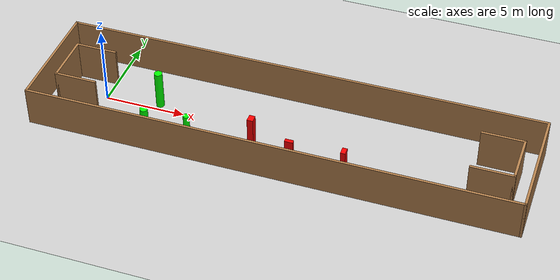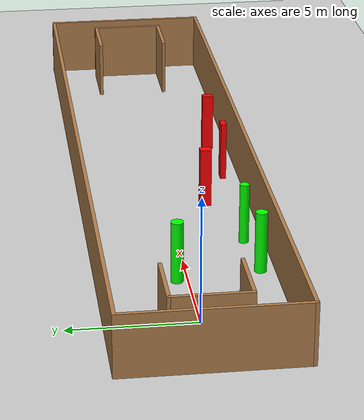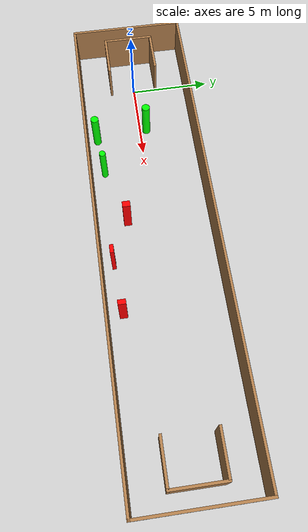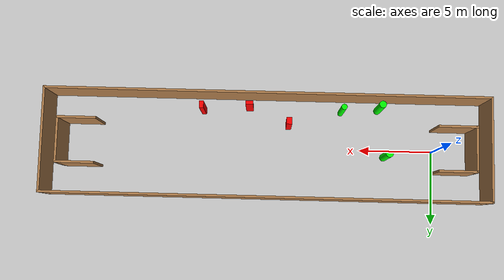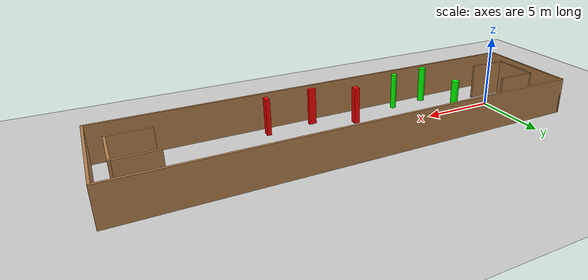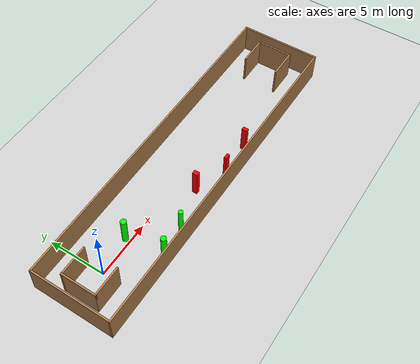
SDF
<sdf version="1.7">
 <world name="default">
  <light name="sun" type="directional">
   <pose>0 0 10 0 -0 0</pose>
   <diffuse>0.8 0.8 0.8 1</diffuse>
   <specular>0.2 0.2 0.2 1</specular>
   <attenuation>
    <range>1000</range>
    <constant>0.9</constant>
    <linear>0.01</linear>
    <quadratic>0.001</quadratic>
   </attenuation>
   <direction>-0.5 0.1 -0.9</direction>
   <spot><inner_angle>0</inner_angle><outer_angle>0</outer_angle><falloff>0</falloff></spot>
  </light>
  <model name="ground_plane">
   <static>1</static>
   <link name="link">
    <collision name="collision">
     <geometry><plane><normal>0 0 1</normal><size>100 100</size></plane></geometry>
     <surface>
      <contact><collide_bitmask>65535</collide_bitmask></contact>
      <friction><ode><mu>100</mu><mu2>50</mu2></ode></friction>
     </surface>
    </collision>
    <visual name="visual">
     <cast_shadows>0</cast_shadows>
     <geometry><plane><normal>0 0 1</normal><size>100 100</size></plane></geometry>
     <material>
      <script><uri>file://media/materials/scripts/gazebo.material</uri><name>Gazebo/Grey</name></script>
     </material>
    </visual>
   </link>
  </model>
  <gravity>0 0 -9.8</gravity>
  <magnetic_field>6e-06 2.3e-05 -4.2e-05</magnetic_field>
  <atmosphere type="adiabatic"/>
  <physics type="ode">
   <max_step_size>0.001</max_step_size>
   <real_time_factor>1</real_time_factor>
   <real_time_update_rate>1000</real_time_update_rate>
  </physics>
  <scene><ambient>0.4 0.4 0.4 1</ambient><background>0.7 0.7 0.7 1</background><shadows>1</shadows></scene>
  <spherical_coordinates>
   <surface_model>EARTH_WGS84</surface_model>
   <latitude_deg>0</latitude_deg>
   <longitude_deg>0</longitude_deg>
   <elevation>0</elevation>
   <heading_deg>0</heading_deg>
  </spherical_coordinates>
  <model name="my_base_walls">
   <link name="Wall_0">
    <collision name="Wall_0_Collision">
     <geometry><box><size>7.15 0.15 2.5</size></box></geometry>
     <pose>0 0 1.25 0 -0 0</pose>
    </collision>
    <visual name="Wall_0_Visual">
     <pose>0 0 1.25 0 -0 0</pose>
     <geometry><box><size>7.15 0.15 2.5</size></box></geometry>
     <material>
      <script><uri>file://media/materials/scripts/gazebo.material</uri><name>Gazebo/Wood</name></script>
      <ambient>1 1 1 1</ambient>
     </material>
     <meta><layer>0</layer></meta>
    </visual>
    <pose>-15 0 0 0 -0 1.5708</pose>
   </link>
   <link name="Wall_10">
    <collision name="Wall_10_Collision">
     <geometry><box><size>2.65 0.15 2.5</size></box></geometry>
     <pose>0 0 1.25 0 -0 0</pose>
    </collision>
    <visual name="Wall_10_Visual">
     <pose>0 0 1.25 0 -0 0</pose>
     <geometry><box><size>2.65 0.15 2.5</size></box></geometry>
     <material>
      <script><uri>file://media/materials/scripts/gazebo.material</uri><name>Gazebo/Wood</name></script>
      <ambient>1 1 1 1</ambient>
     </material>
     <meta><layer>0</layer></meta>
    </visual>
    <pose>-12.75 -1.5 0 0 -0 0</pose>
   </link>
   <link name="Wall_12">
    <collision name="Wall_12_Collision">
     <geometry><box><size>2.65 0.15 2.5</size></box></geometry>
     <pose>0 0 1.25 0 -0 0</pose>
    </collision>
    <visual name="Wall_12_Visual">
     <pose>0 0 1.25 0 -0 0</pose>
     <geometry><box><size>2.65 0.15 2.5</size></box></geometry>
     <material>
      <script><uri>file://media/materials/scripts/gazebo.material</uri><name>Gazebo/Wood</name></script>
      <ambient>1 1 1 1</ambient>
     </material>
     <meta><layer>0</layer></meta>
    </visual>
    <pose>-12.75 1.5 0 0 -0 0</pose>
   </link>
   <link name="Wall_14">
    <collision name="Wall_14_Collision">
     <geometry><box><size>3.15 0.15 2.5</size></box></geometry>
     <pose>0 0 1.25 0 -0 0</pose>
    </collision>
    <visual name="Wall_14_Visual">
     <pose>0 0 1.25 0 -0 0</pose>
     <geometry><box><size>3.15 0.15 2.5</size></box></geometry>
     <material>
      <script><uri>file://media/materials/scripts/gazebo.material</uri><name>Gazebo/Wood</name></script>
      <ambient>1 1 1 1</ambient>
     </material>
     <meta><layer>0</layer></meta>
    </visual>
    <pose>14 0 0 0 -0 -1.5708</pose>
   </link>
   <link name="Wall_15">
    <collision name="Wall_15_Collision">
     <geometry><box><size>2.65 0.15 2.5</size></box></geometry>
     <pose>0 0 1.25 0 -0 0</pose>
    </collision>
    <visual name="Wall_15_Visual">
     <pose>0 0 1.25 0 -0 0</pose>
     <geometry><box><size>2.65 0.15 2.5</size></box></geometry>
     <material>
      <script><uri>file://media/materials/scripts/gazebo.material</uri><name>Gazebo/Wood</name></script>
      <ambient>1 1 1 1</ambient>
     </material>
     <meta><layer>0</layer></meta>
    </visual>
    <pose>12.75 -1.5 0 0 -0 3.14159</pose>
   </link>
   <link name="Wall_17">
    <collision name="Wall_17_Collision">
     <geometry><box><size>2.65 0.15 2.5</size></box></geometry>
     <pose>0 0 1.25 0 -0 0</pose>
    </collision>
    <visual name="Wall_17_Visual">
     <pose>0 0 1.25 0 -0 0</pose>
     <geometry><box><size>2.65 0.15 2.5</size></box></geometry>
     <material>
      <script><uri>file://media/materials/scripts/gazebo.material</uri><name>Gazebo/Wood</name></script>
      <ambient>1 1 1 1</ambient>
     </material>
     <meta><layer>0</layer></meta>
    </visual>
    <pose>12.75 1.5 0 0 -0 3.14159</pose>
   </link>
   <link name="Wall_2">
    <collision name="Wall_2_Collision">
     <geometry><box><size>30.15 0.15 2.5</size></box></geometry>
     <pose>0 0 1.25 0 -0 0</pose>
    </collision>
    <visual name="Wall_2_Visual">
     <pose>0 0 1.25 0 -0 0</pose>
     <geometry><box><size>30.15 0.15 2.5</size></box></geometry>
     <material>
      <script><uri>file://media/materials/scripts/gazebo.material</uri><name>Gazebo/Wood</name></script>
      <ambient>1 1 1 1</ambient>
     </material>
     <meta><layer>0</layer></meta>
    </visual>
    <pose>-0 -3.5 0 0 -0 0</pose>
   </link>
   <link name="Wall_4">
    <collision name="Wall_4_Collision">
     <geometry><box><size>30.15 0.15 2.5</size></box></geometry>
     <pose>0 0 1.25 0 -0 0</pose>
    </collision>
    <visual name="Wall_4_Visual">
     <pose>0 0 1.25 0 -0 0</pose>
     <geometry><box><size>30.15 0.15 2.5</size></box></geometry>
     <material>
      <script><uri>file://media/materials/scripts/gazebo.material</uri><name>Gazebo/Wood</name></script>
      <ambient>1 1 1 1</ambient>
     </material>
     <meta><layer>0</layer></meta>
    </visual>
    <pose>-0 3.5 0 0 -0 0</pose>
   </link>
   <link name="Wall_6">
    <collision name="Wall_6_Collision">
     <geometry><box><size>7.15 0.15 2.5</size></box></geometry>
     <pose>0 0 1.25 0 -0 0</pose>
    </collision>
    <visual name="Wall_6_Visual">
     <pose>0 0 1.25 0 -0 0</pose>
     <geometry><box><size>7.15 0.15 2.5</size></box></geometry>
     <material>
      <script><uri>file://media/materials/scripts/gazebo.material</uri><name>Gazebo/Wood</name></script>
      <ambient>1 1 1 1</ambient>
     </material>
     <meta><layer>0</layer></meta>
    </visual>
    <pose>15 0 0 0 -0 -1.5708</pose>
   </link>
   <link name="Wall_9">
    <collision name="Wall_9_Collision">
     <geometry><box><size>3.15 0.15 2.5</size></box></geometry>
     <pose>0 0 1.25 0 -0 0</pose>
    </collision>
    <visual name="Wall_9_Visual">
     <pose>0 0 1.25 0 -0 0</pose>
     <geometry><box><size>3.15 0.15 2.5</size></box></geometry>
     <material>
      <script><uri>file://media/materials/scripts/gazebo.material</uri><name>Gazebo/Wood</name></script>
      <ambient>1 1 1 1</ambient>
     </material>
     <meta><layer>0</layer></meta>
    </visual>
    <pose>-14 0 0 0 -0 -1.5708</pose>
   </link>
   <static>1</static>
   <pose>11.5 0 0 0 -0 0</pose>
  </model>
  <model name="cylinder1">
   <static>1</static>
   <link name="link">
    <inertial>
     <mass>1</mass>
     <inertia><ixx>0.5</ixx><ixy>0</ixy><ixz>0</ixz><iyy>0.5</iyy><iyz>0</iyz><izz>1</izz></inertia>
    </inertial>
    <collision name="collision">
     <geometry><cylinder><radius>0.2398154723349402</radius><length>2.5</length></cylinder></geometry>
    </collision>
    <visual name="visual">
     <geometry><cylinder><radius>0.2398154723349402</radius><length>2.5</length></cylinder></geometry>
     <material>
      <ambient>0 1 0 1</ambient>
      <diffuse>0 1 0 1</diffuse>
      <specular>0.1 0.1 0.1 1</specular>
      <emissive>0 0 0 0</emissive>
     </material>
    </visual>
   </link>
   <pose>3.7863851373883737 -2.86181313685131 1.25 0 0 0</pose>
  </model>
  <model name="cylinder2">
   <static>1</static>
   <link name="link">
    <inertial>
     <mass>1</mass>
     <inertia><ixx>0.5</ixx><ixy>0</ixy><ixz>0</ixz><iyy>0.5</iyy><iyz>0</iyz><izz>1</izz></inertia>
    </inertial>
    <collision name="collision">
     <geometry><cylinder><radius>0.1946924926845021</radius><length>2.5</length></cylinder></geometry>
    </collision>
    <visual name="visual">
     <geometry><cylinder><radius>0.1946924926845021</radius><length>2.5</length></cylinder></geometry>
     <material>
      <ambient>0 1 0 1</ambient>
      <diffuse>0 1 0 1</diffuse>
      <specular>0.1 0.1 0.1 1</specular>
      <emissive>0 0 0 0</emissive>
     </material>
    </visual>
   </link>
   <pose>6.369601735368981 -2.6365101897236207 1.25 0 0 0</pose>
  </model>
  <model name="cylinder3">
   <static>1</static>
   <link name="link">
    <inertial>
     <mass>1</mass>
     <inertia><ixx>0.5</ixx><ixy>0</ixy><ixz>0</ixz><iyy>0.5</iyy><iyz>0</iyz><izz>1</izz></inertia>
    </inertial>
    <collision name="collision">
     <geometry><cylinder><radius>0.2504736269086462</radius><length>2.5</length></cylinder></geometry>
    </collision>
    <visual name="visual">
     <geometry><cylinder><radius>0.2504736269086462</radius><length>2.5</length></cylinder></geometry>
     <material>
      <ambient>0 1 0 1</ambient>
      <diffuse>0 1 0 1</diffuse>
      <specular>0.1 0.1 0.1 1</specular>
      <emissive>0 0 0 0</emissive>
     </material>
    </visual>
   </link>
   <pose>3.329334207145683 0.4367408409897666 1.25 0 0 0</pose>
  </model>
  <model name="box1">
   <static>1</static>
   <link name="link">
    <inertial>
     <mass>1</mass>
     <inertia><ixx>0.083</ixx><ixy>0</ixy><ixz>0</ixz><iyy>0.083</iyy><iyz>0</iyz><izz>0.083</izz></inertia>
    </inertial>
    <collision name="collision">
     <geometry><box><size>0.503717709221512 0.23268635631429474 2.5</size></box></geometry>
    </collision>
    <visual name="visual">
     <geometry><box><size>0.503717709221512 0.23268635631429474 2.5</size></box></geometry>
     <material>
      <ambient>1 0 0 1</ambient>
      <diffuse>1 0 0 1</diffuse>
      <specular>0.1 0.1 0.1 1</specular>
      <emissive>0 0 0 0</emissive>
     </material>
    </visual>
    <sensor name="my_contact" type="contact">
     <contact><collision>box_collision</collision><topic>__default_topic__</topic></contact>
    </sensor>
   </link>
   <pose>12.733126397422422 -2.7662881491875373 1.25 0 0 0</pose>
  </model>
  <model name="box2">
   <static>1</static>
   <link name="link">
    <inertial>
     <mass>1</mass>
     <inertia><ixx>0.083</ixx><ixy>0</ixy><ixz>0</ixz><iyy>0.083</iyy><iyz>0</iyz><izz>0.083</izz></inertia>
    </inertial>
    <collision name="collision">
     <geometry><box><size>0.3631722740584997 0.46799386264464526 2.5</size></box></geometry>
    </collision>
    <visual name="visual">
     <geometry><box><size>0.3631722740584997 0.46799386264464526 2.5</size></box></geometry>
     <material>
      <ambient>1 0 0 1</ambient>
      <diffuse>1 0 0 1</diffuse>
      <specular>0.1 0.1 0.1 1</specular>
      <emissive>0 0 0 0</emissive>
     </material>
    </visual>
    <sensor name="my_contact" type="contact">
     <contact><collision>box_collision</collision><topic>__default_topic__</topic></contact>
    </sensor>
   </link>
   <pose>10.023567913797734 -1.6174793597225654 1.25 0 0 0</pose>
  </model>
  <model name="box3">
   <static>1</static>
   <link name="link">
    <inertial>
     <mass>1</mass>
     <inertia><ixx>0.083</ixx><ixy>0</ixy><ixz>0</ixz><iyy>0.083</iyy><iyz>0</iyz><izz>0.083</izz></inertia>
    </inertial>
    <collision name="collision">
     <geometry><box><size>0.28966851775380376 0.467669726113516 2.5</size></box></geometry>
    </collision>
    <visual name="visual">
     <geometry><box><size>0.28966851775380376 0.467669726113516 2.5</size></box></geometry>
     <material>
      <ambient>1 0 0 1</ambient>
      <diffuse>1 0 0 1</diffuse>
      <specular>0.1 0.1 0.1 1</specular>
      <emissive>0 0 0 0</emissive>
     </material>
    </visual>
    <sensor name="my_contact" type="contact">
     <contact><collision>box_collision</collision><topic>__default_topic__</topic></contact>
    </sensor>
   </link>
   <pose>15.935842555059558 -2.567977606325161 1.25 0 0 0</pose>
  </model>
 </world>
</sdf>
